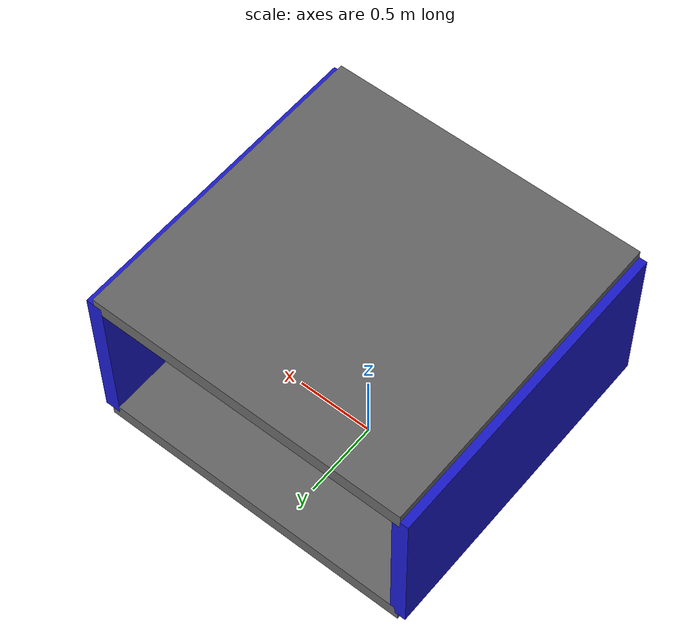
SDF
<?xml version="1.0" ?>
<sdf version="1.6">
  <model name="reactor">
    <static>false</static>

    <!-- Main body -->
    <link name="main_body">
      <pose>0 0 0.5 0 0 0</pose>
      <inertial>
        <mass>20.0</mass>
        <inertia>
          <ixx>1.0</ixx>
          <iyy>1.0</iyy>
          <izz>1.0</izz>
          <ixy>0.0</ixy>
          <ixz>0.0</ixz>
          <iyz>0.0</iyz>
        </inertia>
      </inertial>

      <!-- Floor -->
      <collision name="floor_collision">
        <geometry><box><size>2 2 0.1</size></box></geometry>
        <pose>0 0 0 0 0 0</pose>
      </collision>
      <visual name="floor_visual">
        <geometry><box><size>2 2 0.1</size></box></geometry>
        <pose>0 0 0 0 0 0</pose>
        <material>
          <diffuse>0.4 0.4 0.4 1</diffuse>
        </material>
      </visual>

      <!-- Top -->
      <collision name="top_collision">
        <geometry><box><size>2 2 0.1</size></box></geometry>
        <pose>0 0 1 0 0 0</pose>
      </collision>
      <visual name="top_visual">
        <geometry><box><size>2 2 0.1</size></box></geometry>
        <pose>0 0 1 0 0 0</pose>
        <material>
          <diffuse>0.4 0.4 0.4 1</diffuse>
        </material>
      </visual>

      <!-- Left Wall -->
      <collision name="left_wall_collision">
        <geometry><box><size>0.1 2 1</size></box></geometry>
        <pose>-1 0 0.5 0 0 0</pose>
      </collision>
      <visual name="left_wall_visual">
        <geometry><box><size>0.1 2 1</size></box></geometry>
        <pose>-1 0 0.5 0 0 0</pose>
        <material>
          <diffuse>0.1 0.1 0.8 1</diffuse>
        </material>
      </visual>

      <!-- Right Wall -->
      <collision name="right_wall_collision">
        <geometry><box><size>0.1 2 1</size></box></geometry>
        <pose>1 0 0.5 0 0 0</pose>
      </collision>
      <visual name="right_wall_visual">
        <geometry><box><size>0.1 2 1</size></box></geometry>
        <pose>1 0 0.5 0 0 0</pose>
        <material>
          <diffuse>0.1 0.1 0.8 1</diffuse>
        </material>
      </visual>
    </link>

  </model>
</sdf>
